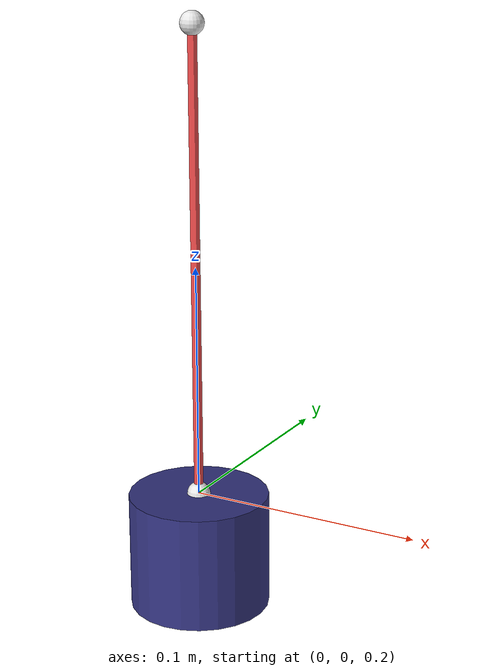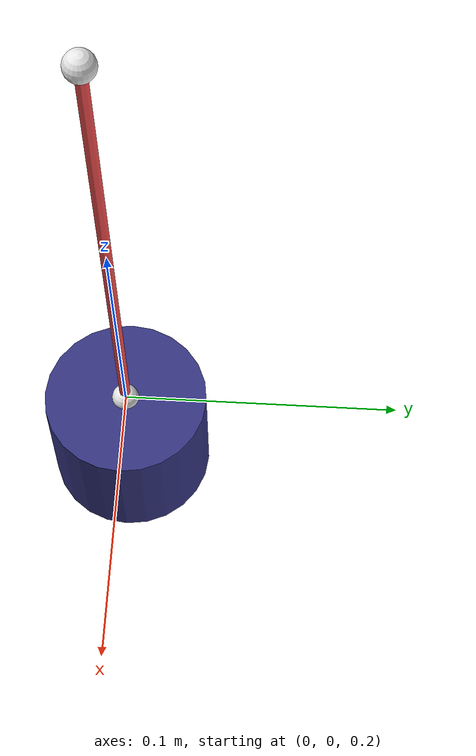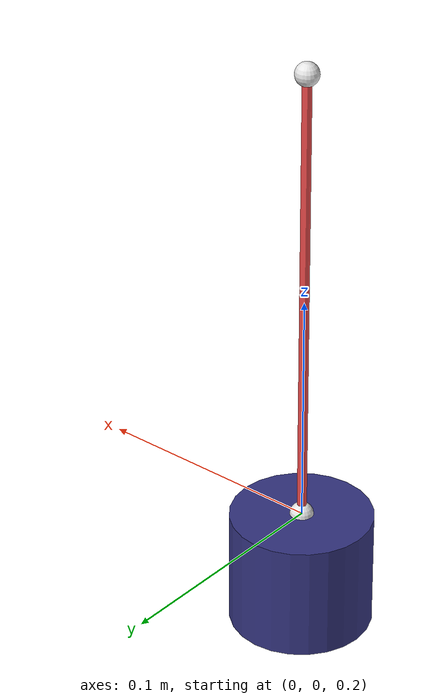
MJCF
<mujoco model="test">
    <compiler coordinate="global" />

    <default>
        <geom rgba=".9 .7 .1 1" size="0.01" />
        <site type="sphere" rgba=".9 .9 .9 1" size="0.005" />
        <joint type="hinge" axis="0 1 0" limited="true" range="-30 60" solimplimit="0.95 0.95 0.1" />
        <motor gear="-1" forcelimited="true" forcerange="0 10" ctrllimited="true" ctrlrange="0 10"/>
    </default>

    <visual>
        <headlight diffuse=".7 .7 .7" />
    </visual>

    <worldbody>
        <site name="s0" pos="0 0 0.4" />
        <body>
            <geom type="cylinder" fromto="0 0 0.2 0 0 0.15" size="0.03" rgba=".2 .2 .5 1" mass="1" />
            <joint type="slide" pos="-0.03 0 0.2" axis="0 0 1" limited="false" />
            <site name="s1" pos="0 0 0.2" />
        </body>
    </worldbody>

    <tendon>
        <spatial name="red" width="0.002" rgba=".95 .3 .3 1" limited="true" range="0 0.33">
            <site site="s0" />
            <site site="s1" />
        </spatial>
    </tendon>
    <actuator>
        <motor name="motor" tendon="red"/>
    </actuator>
</mujoco>
